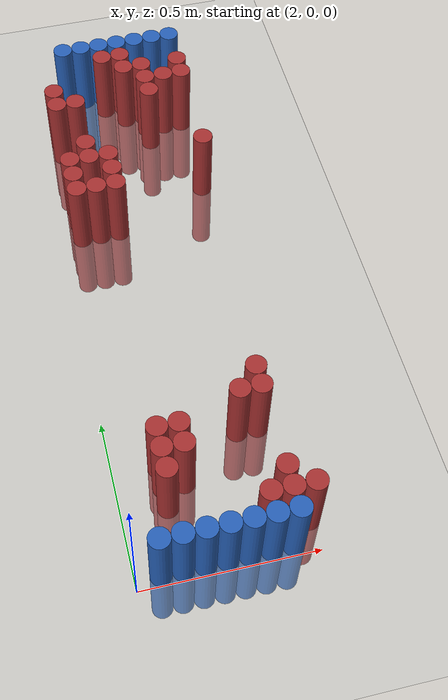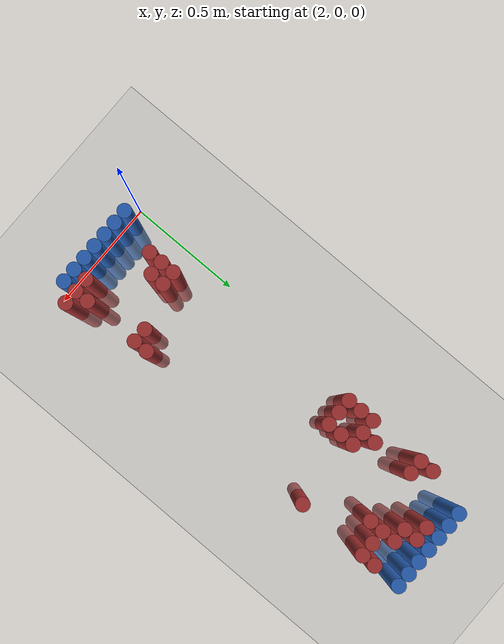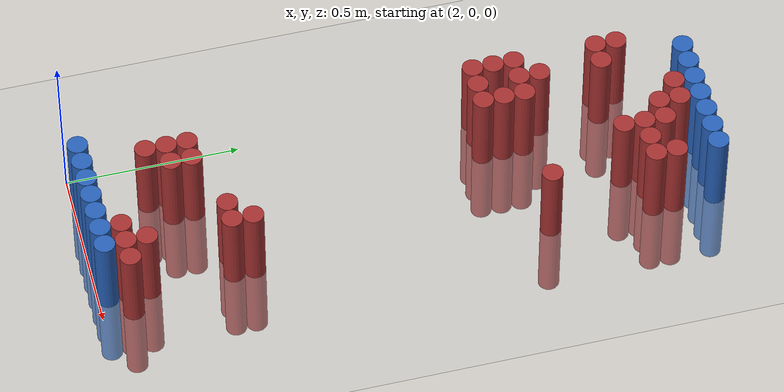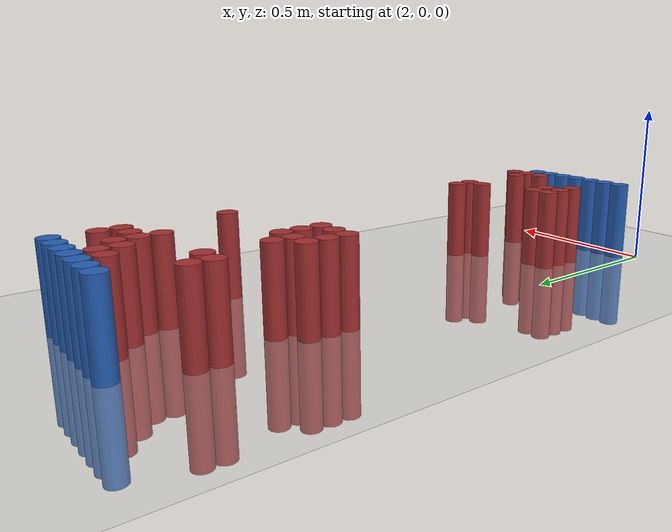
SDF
<sdf version="1.6">
 <world name="default">
  <model name="ground_plane">
   <static>1</static>
   <link name="link">
    <collision name="collision">
     <geometry><plane><normal>0 0 1</normal><size>100 100</size></plane></geometry>
     <surface><friction><ode><mu>100</mu><mu2>50</mu2></ode></friction></surface>
    </collision>
    <visual name="visual">
     <cast_shadows>0</cast_shadows>
     <geometry><plane><normal>0 0 1</normal><size>100 100</size></plane></geometry>
     <material>
      <script><uri>file://media/materials/scripts/gazebo.material</uri><name>Gazebo/Grey</name></script>
     </material>
    </visual>
   </link>
  </model>
  <model name="unit_cylinder_96">
   <static>1</static>
   <pose>2.130000 1.770000 0.000000 0.000000 0.000000 0.000000</pose>
   <link name="link">
    <inertial>
     <mass>1</mass>
     <inertia><ixx>0.145833</ixx><ixy>0</ixy><ixz>0</ixz><iyy>0.145833</iyy><iyz>0</iyz><izz>0.125</izz></inertia>
    </inertial>
    <collision name="collision">
     <geometry><cylinder><radius>0.030000</radius><length>0.5</length></cylinder></geometry>
    </collision>
    <visual name="visual">
     <geometry><cylinder><radius>0.030000</radius><length>0.5</length></cylinder></geometry>
     <material>
      <ambient>0.152000 0.379000 0.720000 1</ambient>
      <diffuse>0.152000 0.379000 0.720000 1</diffuse>
     </material>
     <material>
      <script><name>Gazebo/Grey</name><uri>file://media/materials/scripts/gazebo.material</uri></script>
     </material>
    </visual>
   </link>
  </model>
  <model name="unit_cylinder_97">
   <static>1</static>
   <pose>2.190000 1.770000 0.000000 0.000000 0.000000 0.000000</pose>
   <link name="link">
    <inertial>
     <mass>1</mass>
     <inertia><ixx>0.145833</ixx><ixy>0</ixy><ixz>0</ixz><iyy>0.145833</iyy><iyz>0</iyz><izz>0.125</izz></inertia>
    </inertial>
    <collision name="collision">
     <geometry><cylinder><radius>0.030000</radius><length>0.5</length></cylinder></geometry>
    </collision>
    <visual name="visual">
     <geometry><cylinder><radius>0.030000</radius><length>0.5</length></cylinder></geometry>
     <material>
      <ambient>0.152000 0.379000 0.720000 1</ambient>
      <diffuse>0.152000 0.379000 0.720000 1</diffuse>
     </material>
     <material>
      <script><name>Gazebo/Grey</name><uri>file://media/materials/scripts/gazebo.material</uri></script>
     </material>
    </visual>
   </link>
  </model>
  <model name="unit_cylinder_98">
   <static>1</static>
   <pose>2.250000 1.770000 0.000000 0.000000 0.000000 0.000000</pose>
   <link name="link">
    <inertial>
     <mass>1</mass>
     <inertia><ixx>0.145833</ixx><ixy>0</ixy><ixz>0</ixz><iyy>0.145833</iyy><iyz>0</iyz><izz>0.125</izz></inertia>
    </inertial>
    <collision name="collision">
     <geometry><cylinder><radius>0.030000</radius><length>0.5</length></cylinder></geometry>
    </collision>
    <visual name="visual">
     <geometry><cylinder><radius>0.030000</radius><length>0.5</length></cylinder></geometry>
     <material>
      <ambient>0.152000 0.379000 0.720000 1</ambient>
      <diffuse>0.152000 0.379000 0.720000 1</diffuse>
     </material>
     <material>
      <script><name>Gazebo/Grey</name><uri>file://media/materials/scripts/gazebo.material</uri></script>
     </material>
    </visual>
   </link>
  </model>
  <model name="unit_cylinder_99">
   <static>1</static>
   <pose>2.310000 1.770000 0.000000 0.000000 0.000000 0.000000</pose>
   <link name="link">
    <inertial>
     <mass>1</mass>
     <inertia><ixx>0.145833</ixx><ixy>0</ixy><ixz>0</ixz><iyy>0.145833</iyy><iyz>0</iyz><izz>0.125</izz></inertia>
    </inertial>
    <collision name="collision">
     <geometry><cylinder><radius>0.030000</radius><length>0.5</length></cylinder></geometry>
    </collision>
    <visual name="visual">
     <geometry><cylinder><radius>0.030000</radius><length>0.5</length></cylinder></geometry>
     <material>
      <ambient>0.152000 0.379000 0.720000 1</ambient>
      <diffuse>0.152000 0.379000 0.720000 1</diffuse>
     </material>
     <material>
      <script><name>Gazebo/Grey</name><uri>file://media/materials/scripts/gazebo.material</uri></script>
     </material>
    </visual>
   </link>
  </model>
  <model name="unit_cylinder_100">
   <static>1</static>
   <pose>2.370000 1.770000 0.000000 0.000000 0.000000 0.000000</pose>
   <link name="link">
    <inertial>
     <mass>1</mass>
     <inertia><ixx>0.145833</ixx><ixy>0</ixy><ixz>0</ixz><iyy>0.145833</iyy><iyz>0</iyz><izz>0.125</izz></inertia>
    </inertial>
    <collision name="collision">
     <geometry><cylinder><radius>0.030000</radius><length>0.5</length></cylinder></geometry>
    </collision>
    <visual name="visual">
     <geometry><cylinder><radius>0.030000</radius><length>0.5</length></cylinder></geometry>
     <material>
      <ambient>0.152000 0.379000 0.720000 1</ambient>
      <diffuse>0.152000 0.379000 0.720000 1</diffuse>
     </material>
     <material>
      <script><name>Gazebo/Grey</name><uri>file://media/materials/scripts/gazebo.material</uri></script>
     </material>
    </visual>
   </link>
  </model>
  <model name="unit_cylinder_101">
   <static>1</static>
   <pose>2.430000 1.770000 0.000000 0.000000 0.000000 0.000000</pose>
   <link name="link">
    <inertial>
     <mass>1</mass>
     <inertia><ixx>0.145833</ixx><ixy>0</ixy><ixz>0</ixz><iyy>0.145833</iyy><iyz>0</iyz><izz>0.125</izz></inertia>
    </inertial>
    <collision name="collision">
     <geometry><cylinder><radius>0.030000</radius><length>0.5</length></cylinder></geometry>
    </collision>
    <visual name="visual">
     <geometry><cylinder><radius>0.030000</radius><length>0.5</length></cylinder></geometry>
     <material>
      <ambient>0.152000 0.379000 0.720000 1</ambient>
      <diffuse>0.152000 0.379000 0.720000 1</diffuse>
     </material>
     <material>
      <script><name>Gazebo/Grey</name><uri>file://media/materials/scripts/gazebo.material</uri></script>
     </material>
    </visual>
   </link>
  </model>
  <model name="unit_cylinder_102">
   <static>1</static>
   <pose>2.490000 1.770000 0.000000 0.000000 0.000000 0.000000</pose>
   <link name="link">
    <inertial>
     <mass>1</mass>
     <inertia><ixx>0.145833</ixx><ixy>0</ixy><ixz>0</ixz><iyy>0.145833</iyy><iyz>0</iyz><izz>0.125</izz></inertia>
    </inertial>
    <collision name="collision">
     <geometry><cylinder><radius>0.030000</radius><length>0.5</length></cylinder></geometry>
    </collision>
    <visual name="visual">
     <geometry><cylinder><radius>0.030000</radius><length>0.5</length></cylinder></geometry>
     <material>
      <ambient>0.152000 0.379000 0.720000 1</ambient>
      <diffuse>0.152000 0.379000 0.720000 1</diffuse>
     </material>
     <material>
      <script><name>Gazebo/Grey</name><uri>file://media/materials/scripts/gazebo.material</uri></script>
     </material>
    </visual>
   </link>
  </model>
  <model name="unit_cylinder_125">
   <static>1</static>
   <pose>2.250000 1.710000 0.000000 0.000000 0.000000 0.000000</pose>
   <link name="link">
    <inertial>
     <mass>1</mass>
     <inertia><ixx>0.145833</ixx><ixy>0</ixy><ixz>0</ixz><iyy>0.145833</iyy><iyz>0</iyz><izz>0.125</izz></inertia>
    </inertial>
    <collision name="collision">
     <geometry><cylinder><radius>0.030000</radius><length>0.5</length></cylinder></geometry>
    </collision>
    <visual name="visual">
     <geometry><cylinder><radius>0.030000</radius><length>0.5</length></cylinder></geometry>
     <material>
      <ambient>0.648000 0.192000 0.192000 1</ambient>
      <diffuse>0.648000 0.192000 0.192000 1</diffuse>
     </material>
     <material>
      <script><name>Gazebo/Grey</name><uri>file://media/materials/scripts/gazebo.material</uri></script>
     </material>
    </visual>
   </link>
  </model>
  <model name="unit_cylinder_126">
   <static>1</static>
   <pose>2.310000 1.710000 0.000000 0.000000 0.000000 0.000000</pose>
   <link name="link">
    <inertial>
     <mass>1</mass>
     <inertia><ixx>0.145833</ixx><ixy>0</ixy><ixz>0</ixz><iyy>0.145833</iyy><iyz>0</iyz><izz>0.125</izz></inertia>
    </inertial>
    <collision name="collision">
     <geometry><cylinder><radius>0.030000</radius><length>0.5</length></cylinder></geometry>
    </collision>
    <visual name="visual">
     <geometry><cylinder><radius>0.030000</radius><length>0.5</length></cylinder></geometry>
     <material>
      <ambient>0.648000 0.192000 0.192000 1</ambient>
      <diffuse>0.648000 0.192000 0.192000 1</diffuse>
     </material>
     <material>
      <script><name>Gazebo/Grey</name><uri>file://media/materials/scripts/gazebo.material</uri></script>
     </material>
    </visual>
   </link>
  </model>
  <model name="unit_cylinder_142">
   <static>1</static>
   <pose>2.310000 1.650000 0.000000 0.000000 0.000000 0.000000</pose>
   <link name="link">
    <inertial>
     <mass>1</mass>
     <inertia><ixx>0.145833</ixx><ixy>0</ixy><ixz>0</ixz><iyy>0.145833</iyy><iyz>0</iyz><izz>0.125</izz></inertia>
    </inertial>
    <collision name="collision">
     <geometry><cylinder><radius>0.030000</radius><length>0.5</length></cylinder></geometry>
    </collision>
    <visual name="visual">
     <geometry><cylinder><radius>0.030000</radius><length>0.5</length></cylinder></geometry>
     <material>
      <ambient>0.648000 0.192000 0.192000 1</ambient>
      <diffuse>0.648000 0.192000 0.192000 1</diffuse>
     </material>
     <material>
      <script><name>Gazebo/Grey</name><uri>file://media/materials/scripts/gazebo.material</uri></script>
     </material>
    </visual>
   </link>
  </model>
  <model name="unit_cylinder_143">
   <static>1</static>
   <pose>2.370000 1.650000 0.000000 0.000000 0.000000 0.000000</pose>
   <link name="link">
    <inertial>
     <mass>1</mass>
     <inertia><ixx>0.145833</ixx><ixy>0</ixy><ixz>0</ixz><iyy>0.145833</iyy><iyz>0</iyz><izz>0.125</izz></inertia>
    </inertial>
    <collision name="collision">
     <geometry><cylinder><radius>0.030000</radius><length>0.5</length></cylinder></geometry>
    </collision>
    <visual name="visual">
     <geometry><cylinder><radius>0.030000</radius><length>0.5</length></cylinder></geometry>
     <material>
      <ambient>0.648000 0.192000 0.192000 1</ambient>
      <diffuse>0.648000 0.192000 0.192000 1</diffuse>
     </material>
     <material>
      <script><name>Gazebo/Grey</name><uri>file://media/materials/scripts/gazebo.material</uri></script>
     </material>
    </visual>
   </link>
  </model>
  <model name="unit_cylinder_144">
   <static>1</static>
   <pose>2.490000 1.650000 0.000000 0.000000 0.000000 0.000000</pose>
   <link name="link">
    <inertial>
     <mass>1</mass>
     <inertia><ixx>0.145833</ixx><ixy>0</ixy><ixz>0</ixz><iyy>0.145833</iyy><iyz>0</iyz><izz>0.125</izz></inertia>
    </inertial>
    <collision name="collision">
     <geometry><cylinder><radius>0.030000</radius><length>0.5</length></cylinder></geometry>
    </collision>
    <visual name="visual">
     <geometry><cylinder><radius>0.030000</radius><length>0.5</length></cylinder></geometry>
     <material>
      <ambient>0.648000 0.192000 0.192000 1</ambient>
      <diffuse>0.648000 0.192000 0.192000 1</diffuse>
     </material>
     <material>
      <script><name>Gazebo/Grey</name><uri>file://media/materials/scripts/gazebo.material</uri></script>
     </material>
    </visual>
   </link>
  </model>
  <model name="unit_cylinder_150">
   <static>1</static>
   <pose>2.070000 1.590000 0.000000 0.000000 0.000000 0.000000</pose>
   <link name="link">
    <inertial>
     <mass>1</mass>
     <inertia><ixx>0.145833</ixx><ixy>0</ixy><ixz>0</ixz><iyy>0.145833</iyy><iyz>0</iyz><izz>0.125</izz></inertia>
    </inertial>
    <collision name="collision">
     <geometry><cylinder><radius>0.030000</radius><length>0.5</length></cylinder></geometry>
    </collision>
    <visual name="visual">
     <geometry><cylinder><radius>0.030000</radius><length>0.5</length></cylinder></geometry>
     <material>
      <ambient>0.648000 0.192000 0.192000 1</ambient>
      <diffuse>0.648000 0.192000 0.192000 1</diffuse>
     </material>
     <material>
      <script><name>Gazebo/Grey</name><uri>file://media/materials/scripts/gazebo.material</uri></script>
     </material>
    </visual>
   </link>
  </model>
  <model name="unit_cylinder_151">
   <static>1</static>
   <pose>2.370000 1.590000 0.000000 0.000000 0.000000 0.000000</pose>
   <link name="link">
    <inertial>
     <mass>1</mass>
     <inertia><ixx>0.145833</ixx><ixy>0</ixy><ixz>0</ixz><iyy>0.145833</iyy><iyz>0</iyz><izz>0.125</izz></inertia>
    </inertial>
    <collision name="collision">
     <geometry><cylinder><radius>0.030000</radius><length>0.5</length></cylinder></geometry>
    </collision>
    <visual name="visual">
     <geometry><cylinder><radius>0.030000</radius><length>0.5</length></cylinder></geometry>
     <material>
      <ambient>0.648000 0.192000 0.192000 1</ambient>
      <diffuse>0.648000 0.192000 0.192000 1</diffuse>
     </material>
     <material>
      <script><name>Gazebo/Grey</name><uri>file://media/materials/scripts/gazebo.material</uri></script>
     </material>
    </visual>
   </link>
  </model>
  <model name="unit_cylinder_152">
   <static>1</static>
   <pose>2.430000 1.590000 0.000000 0.000000 0.000000 0.000000</pose>
   <link name="link">
    <inertial>
     <mass>1</mass>
     <inertia><ixx>0.145833</ixx><ixy>0</ixy><ixz>0</ixz><iyy>0.145833</iyy><iyz>0</iyz><izz>0.125</izz></inertia>
    </inertial>
    <collision name="collision">
     <geometry><cylinder><radius>0.030000</radius><length>0.5</length></cylinder></geometry>
    </collision>
    <visual name="visual">
     <geometry><cylinder><radius>0.030000</radius><length>0.5</length></cylinder></geometry>
     <material>
      <ambient>0.648000 0.192000 0.192000 1</ambient>
      <diffuse>0.648000 0.192000 0.192000 1</diffuse>
     </material>
     <material>
      <script><name>Gazebo/Grey</name><uri>file://media/materials/scripts/gazebo.material</uri></script>
     </material>
    </visual>
   </link>
  </model>
  <model name="unit_cylinder_153">
   <static>1</static>
   <pose>2.490000 1.590000 0.000000 0.000000 0.000000 0.000000</pose>
   <link name="link">
    <inertial>
     <mass>1</mass>
     <inertia><ixx>0.145833</ixx><ixy>0</ixy><ixz>0</ixz><iyy>0.145833</iyy><iyz>0</iyz><izz>0.125</izz></inertia>
    </inertial>
    <collision name="collision">
     <geometry><cylinder><radius>0.030000</radius><length>0.5</length></cylinder></geometry>
    </collision>
    <visual name="visual">
     <geometry><cylinder><radius>0.030000</radius><length>0.5</length></cylinder></geometry>
     <material>
      <ambient>0.648000 0.192000 0.192000 1</ambient>
      <diffuse>0.648000 0.192000 0.192000 1</diffuse>
     </material>
     <material>
      <script><name>Gazebo/Grey</name><uri>file://media/materials/scripts/gazebo.material</uri></script>
     </material>
    </visual>
   </link>
  </model>
  <model name="unit_cylinder_154">
   <static>1</static>
   <pose>2.070000 1.530000 0.000000 0.000000 0.000000 0.000000</pose>
   <link name="link">
    <inertial>
     <mass>1</mass>
     <inertia><ixx>0.145833</ixx><ixy>0</ixy><ixz>0</ixz><iyy>0.145833</iyy><iyz>0</iyz><izz>0.125</izz></inertia>
    </inertial>
    <collision name="collision">
     <geometry><cylinder><radius>0.030000</radius><length>0.5</length></cylinder></geometry>
    </collision>
    <visual name="visual">
     <geometry><cylinder><radius>0.030000</radius><length>0.5</length></cylinder></geometry>
     <material>
      <ambient>0.648000 0.192000 0.192000 1</ambient>
      <diffuse>0.648000 0.192000 0.192000 1</diffuse>
     </material>
     <material>
      <script><name>Gazebo/Grey</name><uri>file://media/materials/scripts/gazebo.material</uri></script>
     </material>
    </visual>
   </link>
  </model>
  <model name="unit_cylinder_155">
   <static>1</static>
   <pose>2.130000 1.530000 0.000000 0.000000 0.000000 0.000000</pose>
   <link name="link">
    <inertial>
     <mass>1</mass>
     <inertia><ixx>0.145833</ixx><ixy>0</ixy><ixz>0</ixz><iyy>0.145833</iyy><iyz>0</iyz><izz>0.125</izz></inertia>
    </inertial>
    <collision name="collision">
     <geometry><cylinder><radius>0.030000</radius><length>0.5</length></cylinder></geometry>
    </collision>
    <visual name="visual">
     <geometry><cylinder><radius>0.030000</radius><length>0.5</length></cylinder></geometry>
     <material>
      <ambient>0.648000 0.192000 0.192000 1</ambient>
      <diffuse>0.648000 0.192000 0.192000 1</diffuse>
     </material>
     <material>
      <script><name>Gazebo/Grey</name><uri>file://media/materials/scripts/gazebo.material</uri></script>
     </material>
    </visual>
   </link>
  </model>
  <model name="unit_cylinder_156">
   <static>1</static>
   <pose>2.370000 1.530000 0.000000 0.000000 0.000000 0.000000</pose>
   <link name="link">
    <inertial>
     <mass>1</mass>
     <inertia><ixx>0.145833</ixx><ixy>0</ixy><ixz>0</ixz><iyy>0.145833</iyy><iyz>0</iyz><izz>0.125</izz></inertia>
    </inertial>
    <collision name="collision">
     <geometry><cylinder><radius>0.030000</radius><length>0.5</length></cylinder></geometry>
    </collision>
    <visual name="visual">
     <geometry><cylinder><radius>0.030000</radius><length>0.5</length></cylinder></geometry>
     <material>
      <ambient>0.648000 0.192000 0.192000 1</ambient>
      <diffuse>0.648000 0.192000 0.192000 1</diffuse>
     </material>
     <material>
      <script><name>Gazebo/Grey</name><uri>file://media/materials/scripts/gazebo.material</uri></script>
     </material>
    </visual>
   </link>
  </model>
  <model name="unit_cylinder_162">
   <static>1</static>
   <pose>2.130000 1.350000 0.000000 0.000000 0.000000 0.000000</pose>
   <link name="link">
    <inertial>
     <mass>1</mass>
     <inertia><ixx>0.145833</ixx><ixy>0</ixy><ixz>0</ixz><iyy>0.145833</iyy><iyz>0</iyz><izz>0.125</izz></inertia>
    </inertial>
    <collision name="collision">
     <geometry><cylinder><radius>0.030000</radius><length>0.5</length></cylinder></geometry>
    </collision>
    <visual name="visual">
     <geometry><cylinder><radius>0.030000</radius><length>0.5</length></cylinder></geometry>
     <material>
      <ambient>0.648000 0.192000 0.192000 1</ambient>
      <diffuse>0.648000 0.192000 0.192000 1</diffuse>
     </material>
     <material>
      <script><name>Gazebo/Grey</name><uri>file://media/materials/scripts/gazebo.material</uri></script>
     </material>
    </visual>
   </link>
  </model>
  <model name="unit_cylinder_164">
   <static>1</static>
   <pose>2.070000 1.290000 0.000000 0.000000 0.000000 0.000000</pose>
   <link name="link">
    <inertial>
     <mass>1</mass>
     <inertia><ixx>0.145833</ixx><ixy>0</ixy><ixz>0</ixz><iyy>0.145833</iyy><iyz>0</iyz><izz>0.125</izz></inertia>
    </inertial>
    <collision name="collision">
     <geometry><cylinder><radius>0.030000</radius><length>0.5</length></cylinder></geometry>
    </collision>
    <visual name="visual">
     <geometry><cylinder><radius>0.030000</radius><length>0.5</length></cylinder></geometry>
     <material>
      <ambient>0.648000 0.192000 0.192000 1</ambient>
      <diffuse>0.648000 0.192000 0.192000 1</diffuse>
     </material>
     <material>
      <script><name>Gazebo/Grey</name><uri>file://media/materials/scripts/gazebo.material</uri></script>
     </material>
    </visual>
   </link>
  </model>
  <model name="unit_cylinder_165">
   <static>1</static>
   <pose>2.130000 1.290000 0.000000 0.000000 0.000000 0.000000</pose>
   <link name="link">
    <inertial>
     <mass>1</mass>
     <inertia><ixx>0.145833</ixx><ixy>0</ixy><ixz>0</ixz><iyy>0.145833</iyy><iyz>0</iyz><izz>0.125</izz></inertia>
    </inertial>
    <collision name="collision">
     <geometry><cylinder><radius>0.030000</radius><length>0.5</length></cylinder></geometry>
    </collision>
    <visual name="visual">
     <geometry><cylinder><radius>0.030000</radius><length>0.5</length></cylinder></geometry>
     <material>
      <ambient>0.648000 0.192000 0.192000 1</ambient>
      <diffuse>0.648000 0.192000 0.192000 1</diffuse>
     </material>
     <material>
      <script><name>Gazebo/Grey</name><uri>file://media/materials/scripts/gazebo.material</uri></script>
     </material>
    </visual>
   </link>
  </model>
  <model name="unit_cylinder_166">
   <static>1</static>
   <pose>2.190000 1.290000 0.000000 0.000000 0.000000 0.000000</pose>
   <link name="link">
    <inertial>
     <mass>1</mass>
     <inertia><ixx>0.145833</ixx><ixy>0</ixy><ixz>0</ixz><iyy>0.145833</iyy><iyz>0</iyz><izz>0.125</izz></inertia>
    </inertial>
    <collision name="collision">
     <geometry><cylinder><radius>0.030000</radius><length>0.5</length></cylinder></geometry>
    </collision>
    <visual name="visual">
     <geometry><cylinder><radius>0.030000</radius><length>0.5</length></cylinder></geometry>
     <material>
      <ambient>0.648000 0.192000 0.192000 1</ambient>
      <diffuse>0.648000 0.192000 0.192000 1</diffuse>
     </material>
     <material>
      <script><name>Gazebo/Grey</name><uri>file://media/materials/scripts/gazebo.material</uri></script>
     </material>
    </visual>
   </link>
  </model>
  <model name="unit_cylinder_167">
   <static>1</static>
   <pose>2.490000 1.290000 0.000000 0.000000 0.000000 0.000000</pose>
   <link name="link">
    <inertial>
     <mass>1</mass>
     <inertia><ixx>0.145833</ixx><ixy>0</ixy><ixz>0</ixz><iyy>0.145833</iyy><iyz>0</iyz><izz>0.125</izz></inertia>
    </inertial>
    <collision name="collision">
     <geometry><cylinder><radius>0.030000</radius><length>0.5</length></cylinder></geometry>
    </collision>
    <visual name="visual">
     <geometry><cylinder><radius>0.030000</radius><length>0.5</length></cylinder></geometry>
     <material>
      <ambient>0.648000 0.192000 0.192000 1</ambient>
      <diffuse>0.648000 0.192000 0.192000 1</diffuse>
     </material>
     <material>
      <script><name>Gazebo/Grey</name><uri>file://media/materials/scripts/gazebo.material</uri></script>
     </material>
    </visual>
   </link>
  </model>
  <model name="unit_cylinder_169">
   <static>1</static>
   <pose>2.070000 1.230000 0.000000 0.000000 0.000000 0.000000</pose>
   <link name="link">
    <inertial>
     <mass>1</mass>
     <inertia><ixx>0.145833</ixx><ixy>0</ixy><ixz>0</ixz><iyy>0.145833</iyy><iyz>0</iyz><izz>0.125</izz></inertia>
    </inertial>
    <collision name="collision">
     <geometry><cylinder><radius>0.030000</radius><length>0.5</length></cylinder></geometry>
    </collision>
    <visual name="visual">
     <geometry><cylinder><radius>0.030000</radius><length>0.5</length></cylinder></geometry>
     <material>
      <ambient>0.648000 0.192000 0.192000 1</ambient>
      <diffuse>0.648000 0.192000 0.192000 1</diffuse>
     </material>
     <material>
      <script><name>Gazebo/Grey</name><uri>file://media/materials/scripts/gazebo.material</uri></script>
     </material>
    </visual>
   </link>
  </model>
  <model name="unit_cylinder_170">
   <static>1</static>
   <pose>2.190000 1.230000 0.000000 0.000000 0.000000 0.000000</pose>
   <link name="link">
    <inertial>
     <mass>1</mass>
     <inertia><ixx>0.145833</ixx><ixy>0</ixy><ixz>0</ixz><iyy>0.145833</iyy><iyz>0</iyz><izz>0.125</izz></inertia>
    </inertial>
    <collision name="collision">
     <geometry><cylinder><radius>0.030000</radius><length>0.5</length></cylinder></geometry>
    </collision>
    <visual name="visual">
     <geometry><cylinder><radius>0.030000</radius><length>0.5</length></cylinder></geometry>
     <material>
      <ambient>0.648000 0.192000 0.192000 1</ambient>
      <diffuse>0.648000 0.192000 0.192000 1</diffuse>
     </material>
     <material>
      <script><name>Gazebo/Grey</name><uri>file://media/materials/scripts/gazebo.material</uri></script>
     </material>
    </visual>
   </link>
  </model>
  <model name="unit_cylinder_173">
   <static>1</static>
   <pose>2.070000 1.170000 0.000000 0.000000 0.000000 0.000000</pose>
   <link name="link">
    <inertial>
     <mass>1</mass>
     <inertia><ixx>0.145833</ixx><ixy>0</ixy><ixz>0</ixz><iyy>0.145833</iyy><iyz>0</iyz><izz>0.125</izz></inertia>
    </inertial>
    <collision name="collision">
     <geometry><cylinder><radius>0.030000</radius><length>0.5</length></cylinder></geometry>
    </collision>
    <visual name="visual">
     <geometry><cylinder><radius>0.030000</radius><length>0.5</length></cylinder></geometry>
     <material>
      <ambient>0.648000 0.192000 0.192000 1</ambient>
      <diffuse>0.648000 0.192000 0.192000 1</diffuse>
     </material>
     <material>
      <script><name>Gazebo/Grey</name><uri>file://media/materials/scripts/gazebo.material</uri></script>
     </material>
    </visual>
   </link>
  </model>
  <model name="unit_cylinder_174">
   <static>1</static>
   <pose>2.130000 1.170000 0.000000 0.000000 0.000000 0.000000</pose>
   <link name="link">
    <inertial>
     <mass>1</mass>
     <inertia><ixx>0.145833</ixx><ixy>0</ixy><ixz>0</ixz><iyy>0.145833</iyy><iyz>0</iyz><izz>0.125</izz></inertia>
    </inertial>
    <collision name="collision">
     <geometry><cylinder><radius>0.030000</radius><length>0.5</length></cylinder></geometry>
    </collision>
    <visual name="visual">
     <geometry><cylinder><radius>0.030000</radius><length>0.5</length></cylinder></geometry>
     <material>
      <ambient>0.648000 0.192000 0.192000 1</ambient>
      <diffuse>0.648000 0.192000 0.192000 1</diffuse>
     </material>
     <material>
      <script><name>Gazebo/Grey</name><uri>file://media/materials/scripts/gazebo.material</uri></script>
     </material>
    </visual>
   </link>
  </model>
  <model name="unit_cylinder_175">
   <static>1</static>
   <pose>2.190000 1.170000 0.000000 0.000000 0.000000 0.000000</pose>
   <link name="link">
    <inertial>
     <mass>1</mass>
     <inertia><ixx>0.145833</ixx><ixy>0</ixy><ixz>0</ixz><iyy>0.145833</iyy><iyz>0</iyz><izz>0.125</izz></inertia>
    </inertial>
    <collision name="collision">
     <geometry><cylinder><radius>0.030000</radius><length>0.5</length></cylinder></geometry>
    </collision>
    <visual name="visual">
     <geometry><cylinder><radius>0.030000</radius><length>0.5</length></cylinder></geometry>
     <material>
      <ambient>0.648000 0.192000 0.192000 1</ambient>
      <diffuse>0.648000 0.192000 0.192000 1</diffuse>
     </material>
     <material>
      <script><name>Gazebo/Grey</name><uri>file://media/materials/scripts/gazebo.material</uri></script>
     </material>
    </visual>
   </link>
  </model>
  <model name="unit_cylinder_184">
   <static>1</static>
   <pose>2.430000 0.450000 0.000000 0.000000 0.000000 0.000000</pose>
   <link name="link">
    <inertial>
     <mass>1</mass>
     <inertia><ixx>0.145833</ixx><ixy>0</ixy><ixz>0</ixz><iyy>0.145833</iyy><iyz>0</iyz><izz>0.125</izz></inertia>
    </inertial>
    <collision name="collision">
     <geometry><cylinder><radius>0.030000</radius><length>0.5</length></cylinder></geometry>
    </collision>
    <visual name="visual">
     <geometry><cylinder><radius>0.030000</radius><length>0.5</length></cylinder></geometry>
     <material>
      <ambient>0.648000 0.192000 0.192000 1</ambient>
      <diffuse>0.648000 0.192000 0.192000 1</diffuse>
     </material>
     <material>
      <script><name>Gazebo/Grey</name><uri>file://media/materials/scripts/gazebo.material</uri></script>
     </material>
    </visual>
   </link>
  </model>
  <model name="unit_cylinder_185">
   <static>1</static>
   <pose>2.370000 0.390000 0.000000 0.000000 0.000000 0.000000</pose>
   <link name="link">
    <inertial>
     <mass>1</mass>
     <inertia><ixx>0.145833</ixx><ixy>0</ixy><ixz>0</ixz><iyy>0.145833</iyy><iyz>0</iyz><izz>0.125</izz></inertia>
    </inertial>
    <collision name="collision">
     <geometry><cylinder><radius>0.030000</radius><length>0.5</length></cylinder></geometry>
    </collision>
    <visual name="visual">
     <geometry><cylinder><radius>0.030000</radius><length>0.5</length></cylinder></geometry>
     <material>
      <ambient>0.648000 0.192000 0.192000 1</ambient>
      <diffuse>0.648000 0.192000 0.192000 1</diffuse>
     </material>
     <material>
      <script><name>Gazebo/Grey</name><uri>file://media/materials/scripts/gazebo.material</uri></script>
     </material>
    </visual>
   </link>
  </model>
  <model name="unit_cylinder_186">
   <static>1</static>
   <pose>2.430000 0.390000 0.000000 0.000000 0.000000 0.000000</pose>
   <link name="link">
    <inertial>
     <mass>1</mass>
     <inertia><ixx>0.145833</ixx><ixy>0</ixy><ixz>0</ixz><iyy>0.145833</iyy><iyz>0</iyz><izz>0.125</izz></inertia>
    </inertial>
    <collision name="collision">
     <geometry><cylinder><radius>0.030000</radius><length>0.5</length></cylinder></geometry>
    </collision>
    <visual name="visual">
     <geometry><cylinder><radius>0.030000</radius><length>0.5</length></cylinder></geometry>
     <material>
      <ambient>0.648000 0.192000 0.192000 1</ambient>
      <diffuse>0.648000 0.192000 0.192000 1</diffuse>
     </material>
     <material>
      <script><name>Gazebo/Grey</name><uri>file://media/materials/scripts/gazebo.material</uri></script>
     </material>
    </visual>
   </link>
  </model>
  <model name="unit_cylinder_187">
   <static>1</static>
   <pose>2.130000 0.330000 0.000000 0.000000 0.000000 0.000000</pose>
   <link name="link">
    <inertial>
     <mass>1</mass>
     <inertia><ixx>0.145833</ixx><ixy>0</ixy><ixz>0</ixz><iyy>0.145833</iyy><iyz>0</iyz><izz>0.125</izz></inertia>
    </inertial>
    <collision name="collision">
     <geometry><cylinder><radius>0.030000</radius><length>0.5</length></cylinder></geometry>
    </collision>
    <visual name="visual">
     <geometry><cylinder><radius>0.030000</radius><length>0.5</length></cylinder></geometry>
     <material>
      <ambient>0.648000 0.192000 0.192000 1</ambient>
      <diffuse>0.648000 0.192000 0.192000 1</diffuse>
     </material>
     <material>
      <script><name>Gazebo/Grey</name><uri>file://media/materials/scripts/gazebo.material</uri></script>
     </material>
    </visual>
   </link>
  </model>
  <model name="unit_cylinder_188">
   <static>1</static>
   <pose>2.190000 0.330000 0.000000 0.000000 0.000000 0.000000</pose>
   <link name="link">
    <inertial>
     <mass>1</mass>
     <inertia><ixx>0.145833</ixx><ixy>0</ixy><ixz>0</ixz><iyy>0.145833</iyy><iyz>0</iyz><izz>0.125</izz></inertia>
    </inertial>
    <collision name="collision">
     <geometry><cylinder><radius>0.030000</radius><length>0.5</length></cylinder></geometry>
    </collision>
    <visual name="visual">
     <geometry><cylinder><radius>0.030000</radius><length>0.5</length></cylinder></geometry>
     <material>
      <ambient>0.648000 0.192000 0.192000 1</ambient>
      <diffuse>0.648000 0.192000 0.192000 1</diffuse>
     </material>
     <material>
      <script><name>Gazebo/Grey</name><uri>file://media/materials/scripts/gazebo.material</uri></script>
     </material>
    </visual>
   </link>
  </model>
  <model name="unit_cylinder_189">
   <static>1</static>
   <pose>2.130000 0.270000 0.000000 0.000000 0.000000 0.000000</pose>
   <link name="link">
    <inertial>
     <mass>1</mass>
     <inertia><ixx>0.145833</ixx><ixy>0</ixy><ixz>0</ixz><iyy>0.145833</iyy><iyz>0</iyz><izz>0.125</izz></inertia>
    </inertial>
    <collision name="collision">
     <geometry><cylinder><radius>0.030000</radius><length>0.5</length></cylinder></geometry>
    </collision>
    <visual name="visual">
     <geometry><cylinder><radius>0.030000</radius><length>0.5</length></cylinder></geometry>
     <material>
      <ambient>0.648000 0.192000 0.192000 1</ambient>
      <diffuse>0.648000 0.192000 0.192000 1</diffuse>
     </material>
     <material>
      <script><name>Gazebo/Grey</name><uri>file://media/materials/scripts/gazebo.material</uri></script>
     </material>
    </visual>
   </link>
  </model>
  <model name="unit_cylinder_190">
   <static>1</static>
   <pose>2.190000 0.270000 0.000000 0.000000 0.000000 0.000000</pose>
   <link name="link">
    <inertial>
     <mass>1</mass>
     <inertia><ixx>0.145833</ixx><ixy>0</ixy><ixz>0</ixz><iyy>0.145833</iyy><iyz>0</iyz><izz>0.125</izz></inertia>
    </inertial>
    <collision name="collision">
     <geometry><cylinder><radius>0.030000</radius><length>0.5</length></cylinder></geometry>
    </collision>
    <visual name="visual">
     <geometry><cylinder><radius>0.030000</radius><length>0.5</length></cylinder></geometry>
     <material>
      <ambient>0.648000 0.192000 0.192000 1</ambient>
      <diffuse>0.648000 0.192000 0.192000 1</diffuse>
     </material>
     <material>
      <script><name>Gazebo/Grey</name><uri>file://media/materials/scripts/gazebo.material</uri></script>
     </material>
    </visual>
   </link>
  </model>
  <model name="unit_cylinder_194">
   <static>1</static>
   <pose>2.130000 0.210000 0.000000 0.000000 0.000000 0.000000</pose>
   <link name="link">
    <inertial>
     <mass>1</mass>
     <inertia><ixx>0.145833</ixx><ixy>0</ixy><ixz>0</ixz><iyy>0.145833</iyy><iyz>0</iyz><izz>0.125</izz></inertia>
    </inertial>
    <collision name="collision">
     <geometry><cylinder><radius>0.030000</radius><length>0.5</length></cylinder></geometry>
    </collision>
    <visual name="visual">
     <geometry><cylinder><radius>0.030000</radius><length>0.5</length></cylinder></geometry>
     <material>
      <ambient>0.648000 0.192000 0.192000 1</ambient>
      <diffuse>0.648000 0.192000 0.192000 1</diffuse>
     </material>
     <material>
      <script><name>Gazebo/Grey</name><uri>file://media/materials/scripts/gazebo.material</uri></script>
     </material>
    </visual>
   </link>
  </model>
  <model name="unit_cylinder_198">
   <static>1</static>
   <pose>2.430000 0.150000 0.000000 0.000000 0.000000 0.000000</pose>
   <link name="link">
    <inertial>
     <mass>1</mass>
     <inertia><ixx>0.145833</ixx><ixy>0</ixy><ixz>0</ixz><iyy>0.145833</iyy><iyz>0</iyz><izz>0.125</izz></inertia>
    </inertial>
    <collision name="collision">
     <geometry><cylinder><radius>0.030000</radius><length>0.5</length></cylinder></geometry>
    </collision>
    <visual name="visual">
     <geometry><cylinder><radius>0.030000</radius><length>0.5</length></cylinder></geometry>
     <material>
      <ambient>0.648000 0.192000 0.192000 1</ambient>
      <diffuse>0.648000 0.192000 0.192000 1</diffuse>
     </material>
     <material>
      <script><name>Gazebo/Grey</name><uri>file://media/materials/scripts/gazebo.material</uri></script>
     </material>
    </visual>
   </link>
  </model>
  <model name="unit_cylinder_199">
   <static>1</static>
   <pose>2.370000 0.090000 0.000000 0.000000 0.000000 0.000000</pose>
   <link name="link">
    <inertial>
     <mass>1</mass>
     <inertia><ixx>0.145833</ixx><ixy>0</ixy><ixz>0</ixz><iyy>0.145833</iyy><iyz>0</iyz><izz>0.125</izz></inertia>
    </inertial>
    <collision name="collision">
     <geometry><cylinder><radius>0.030000</radius><length>0.5</length></cylinder></geometry>
    </collision>
    <visual name="visual">
     <geometry><cylinder><radius>0.030000</radius><length>0.5</length></cylinder></geometry>
     <material>
      <ambient>0.648000 0.192000 0.192000 1</ambient>
      <diffuse>0.648000 0.192000 0.192000 1</diffuse>
     </material>
     <material>
      <script><name>Gazebo/Grey</name><uri>file://media/materials/scripts/gazebo.material</uri></script>
     </material>
    </visual>
   </link>
  </model>
  <model name="unit_cylinder_200">
   <static>1</static>
   <pose>2.430000 0.090000 0.000000 0.000000 0.000000 0.000000</pose>
   <link name="link">
    <inertial>
     <mass>1</mass>
     <inertia><ixx>0.145833</ixx><ixy>0</ixy><ixz>0</ixz><iyy>0.145833</iyy><iyz>0</iyz><izz>0.125</izz></inertia>
    </inertial>
    <collision name="collision">
     <geometry><cylinder><radius>0.030000</radius><length>0.5</length></cylinder></geometry>
    </collision>
    <visual name="visual">
     <geometry><cylinder><radius>0.030000</radius><length>0.5</length></cylinder></geometry>
     <material>
      <ambient>0.648000 0.192000 0.192000 1</ambient>
      <diffuse>0.648000 0.192000 0.192000 1</diffuse>
     </material>
     <material>
      <script><name>Gazebo/Grey</name><uri>file://media/materials/scripts/gazebo.material</uri></script>
     </material>
    </visual>
   </link>
  </model>
  <model name="unit_cylinder_201">
   <static>1</static>
   <pose>2.490000 0.090000 0.000000 0.000000 0.000000 0.000000</pose>
   <link name="link">
    <inertial>
     <mass>1</mass>
     <inertia><ixx>0.145833</ixx><ixy>0</ixy><ixz>0</ixz><iyy>0.145833</iyy><iyz>0</iyz><izz>0.125</izz></inertia>
    </inertial>
    <collision name="collision">
     <geometry><cylinder><radius>0.030000</radius><length>0.5</length></cylinder></geometry>
    </collision>
    <visual name="visual">
     <geometry><cylinder><radius>0.030000</radius><length>0.5</length></cylinder></geometry>
     <material>
      <ambient>0.648000 0.192000 0.192000 1</ambient>
      <diffuse>0.648000 0.192000 0.192000 1</diffuse>
     </material>
     <material>
      <script><name>Gazebo/Grey</name><uri>file://media/materials/scripts/gazebo.material</uri></script>
     </material>
    </visual>
   </link>
  </model>
  <model name="unit_cylinder_211">
   <static>1</static>
   <pose>2.070000 0.030000 0.000000 0.000000 0.000000 0.000000</pose>
   <link name="link">
    <inertial>
     <mass>1</mass>
     <inertia><ixx>0.145833</ixx><ixy>0</ixy><ixz>0</ixz><iyy>0.145833</iyy><iyz>0</iyz><izz>0.125</izz></inertia>
    </inertial>
    <collision name="collision">
     <geometry><cylinder><radius>0.030000</radius><length>0.5</length></cylinder></geometry>
    </collision>
    <visual name="visual">
     <geometry><cylinder><radius>0.030000</radius><length>0.5</length></cylinder></geometry>
     <material>
      <ambient>0.152000 0.379000 0.720000 1</ambient>
      <diffuse>0.152000 0.379000 0.720000 1</diffuse>
     </material>
     <material>
      <script><name>Gazebo/Grey</name><uri>file://media/materials/scripts/gazebo.material</uri></script>
     </material>
    </visual>
   </link>
  </model>
  <model name="unit_cylinder_212">
   <static>1</static>
   <pose>2.130000 0.030000 0.000000 0.000000 0.000000 0.000000</pose>
   <link name="link">
    <inertial>
     <mass>1</mass>
     <inertia><ixx>0.145833</ixx><ixy>0</ixy><ixz>0</ixz><iyy>0.145833</iyy><iyz>0</iyz><izz>0.125</izz></inertia>
    </inertial>
    <collision name="collision">
     <geometry><cylinder><radius>0.030000</radius><length>0.5</length></cylinder></geometry>
    </collision>
    <visual name="visual">
     <geometry><cylinder><radius>0.030000</radius><length>0.5</length></cylinder></geometry>
     <material>
      <ambient>0.152000 0.379000 0.720000 1</ambient>
      <diffuse>0.152000 0.379000 0.720000 1</diffuse>
     </material>
     <material>
      <script><name>Gazebo/Grey</name><uri>file://media/materials/scripts/gazebo.material</uri></script>
     </material>
    </visual>
   </link>
  </model>
  <model name="unit_cylinder_213">
   <static>1</static>
   <pose>2.190000 0.030000 0.000000 0.000000 0.000000 0.000000</pose>
   <link name="link">
    <inertial>
     <mass>1</mass>
     <inertia><ixx>0.145833</ixx><ixy>0</ixy><ixz>0</ixz><iyy>0.145833</iyy><iyz>0</iyz><izz>0.125</izz></inertia>
    </inertial>
    <collision name="collision">
     <geometry><cylinder><radius>0.030000</radius><length>0.5</length></cylinder></geometry>
    </collision>
    <visual name="visual">
     <geometry><cylinder><radius>0.030000</radius><length>0.5</length></cylinder></geometry>
     <material>
      <ambient>0.152000 0.379000 0.720000 1</ambient>
      <diffuse>0.152000 0.379000 0.720000 1</diffuse>
     </material>
     <material>
      <script><name>Gazebo/Grey</name><uri>file://media/materials/scripts/gazebo.material</uri></script>
     </material>
    </visual>
   </link>
  </model>
  <model name="unit_cylinder_214">
   <static>1</static>
   <pose>2.250000 0.030000 0.000000 0.000000 0.000000 0.000000</pose>
   <link name="link">
    <inertial>
     <mass>1</mass>
     <inertia><ixx>0.145833</ixx><ixy>0</ixy><ixz>0</ixz><iyy>0.145833</iyy><iyz>0</iyz><izz>0.125</izz></inertia>
    </inertial>
    <collision name="collision">
     <geometry><cylinder><radius>0.030000</radius><length>0.5</length></cylinder></geometry>
    </collision>
    <visual name="visual">
     <geometry><cylinder><radius>0.030000</radius><length>0.5</length></cylinder></geometry>
     <material>
      <ambient>0.152000 0.379000 0.720000 1</ambient>
      <diffuse>0.152000 0.379000 0.720000 1</diffuse>
     </material>
     <material>
      <script><name>Gazebo/Grey</name><uri>file://media/materials/scripts/gazebo.material</uri></script>
     </material>
    </visual>
   </link>
  </model>
  <model name="unit_cylinder_215">
   <static>1</static>
   <pose>2.310000 0.030000 0.000000 0.000000 0.000000 0.000000</pose>
   <link name="link">
    <inertial>
     <mass>1</mass>
     <inertia><ixx>0.145833</ixx><ixy>0</ixy><ixz>0</ixz><iyy>0.145833</iyy><iyz>0</iyz><izz>0.125</izz></inertia>
    </inertial>
    <collision name="collision">
     <geometry><cylinder><radius>0.030000</radius><length>0.5</length></cylinder></geometry>
    </collision>
    <visual name="visual">
     <geometry><cylinder><radius>0.030000</radius><length>0.5</length></cylinder></geometry>
     <material>
      <ambient>0.152000 0.379000 0.720000 1</ambient>
      <diffuse>0.152000 0.379000 0.720000 1</diffuse>
     </material>
     <material>
      <script><name>Gazebo/Grey</name><uri>file://media/materials/scripts/gazebo.material</uri></script>
     </material>
    </visual>
   </link>
  </model>
  <model name="unit_cylinder_216">
   <static>1</static>
   <pose>2.370000 0.030000 0.000000 0.000000 0.000000 0.000000</pose>
   <link name="link">
    <inertial>
     <mass>1</mass>
     <inertia><ixx>0.145833</ixx><ixy>0</ixy><ixz>0</ixz><iyy>0.145833</iyy><iyz>0</iyz><izz>0.125</izz></inertia>
    </inertial>
    <collision name="collision">
     <geometry><cylinder><radius>0.030000</radius><length>0.5</length></cylinder></geometry>
    </collision>
    <visual name="visual">
     <geometry><cylinder><radius>0.030000</radius><length>0.5</length></cylinder></geometry>
     <material>
      <ambient>0.152000 0.379000 0.720000 1</ambient>
      <diffuse>0.152000 0.379000 0.720000 1</diffuse>
     </material>
     <material>
      <script><name>Gazebo/Grey</name><uri>file://media/materials/scripts/gazebo.material</uri></script>
     </material>
    </visual>
   </link>
  </model>
  <model name="unit_cylinder_217">
   <static>1</static>
   <pose>2.430000 0.030000 0.000000 0.000000 0.000000 0.000000</pose>
   <link name="link">
    <inertial>
     <mass>1</mass>
     <inertia><ixx>0.145833</ixx><ixy>0</ixy><ixz>0</ixz><iyy>0.145833</iyy><iyz>0</iyz><izz>0.125</izz></inertia>
    </inertial>
    <collision name="collision">
     <geometry><cylinder><radius>0.030000</radius><length>0.5</length></cylinder></geometry>
    </collision>
    <visual name="visual">
     <geometry><cylinder><radius>0.030000</radius><length>0.5</length></cylinder></geometry>
     <material>
      <ambient>0.152000 0.379000 0.720000 1</ambient>
      <diffuse>0.152000 0.379000 0.720000 1</diffuse>
     </material>
     <material>
      <script><name>Gazebo/Grey</name><uri>file://media/materials/scripts/gazebo.material</uri></script>
     </material>
    </visual>
   </link>
  </model>
 </world>
</sdf>
